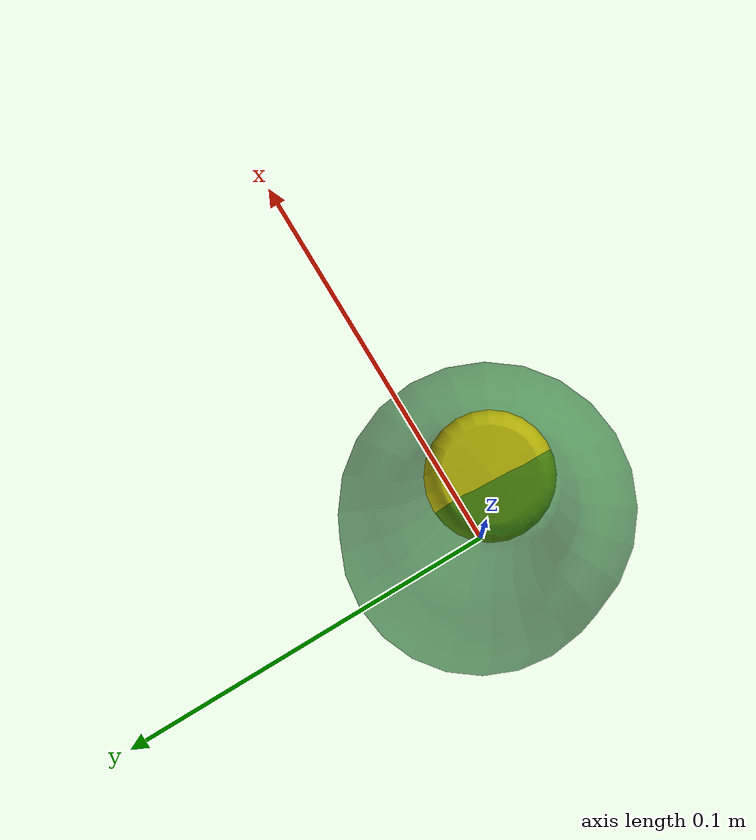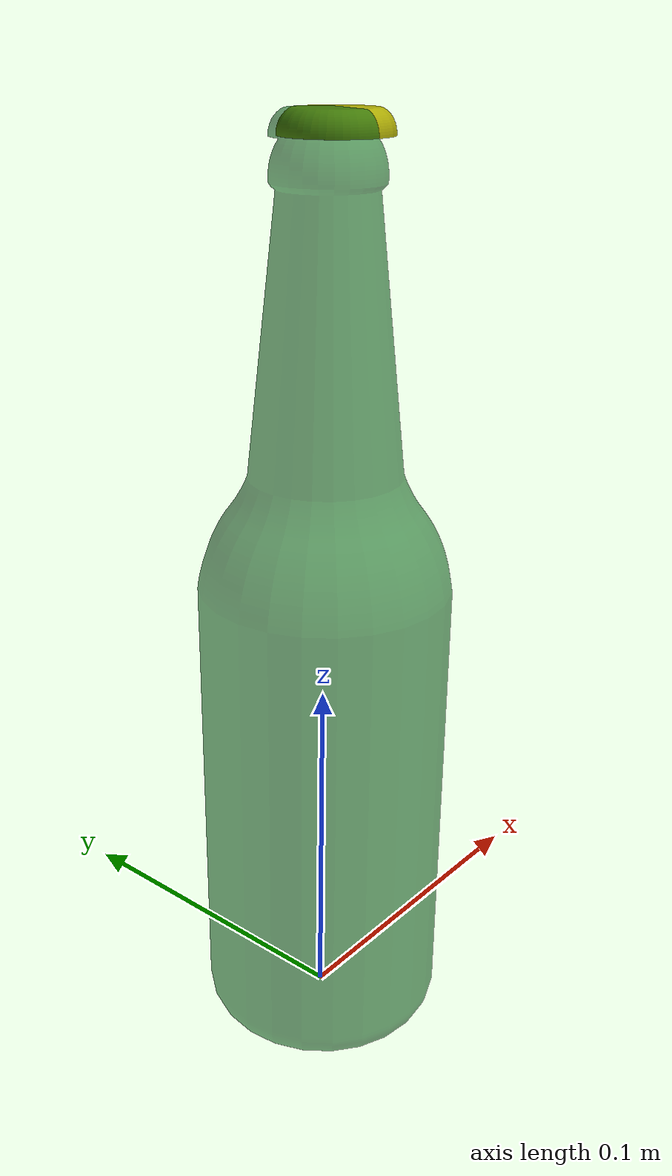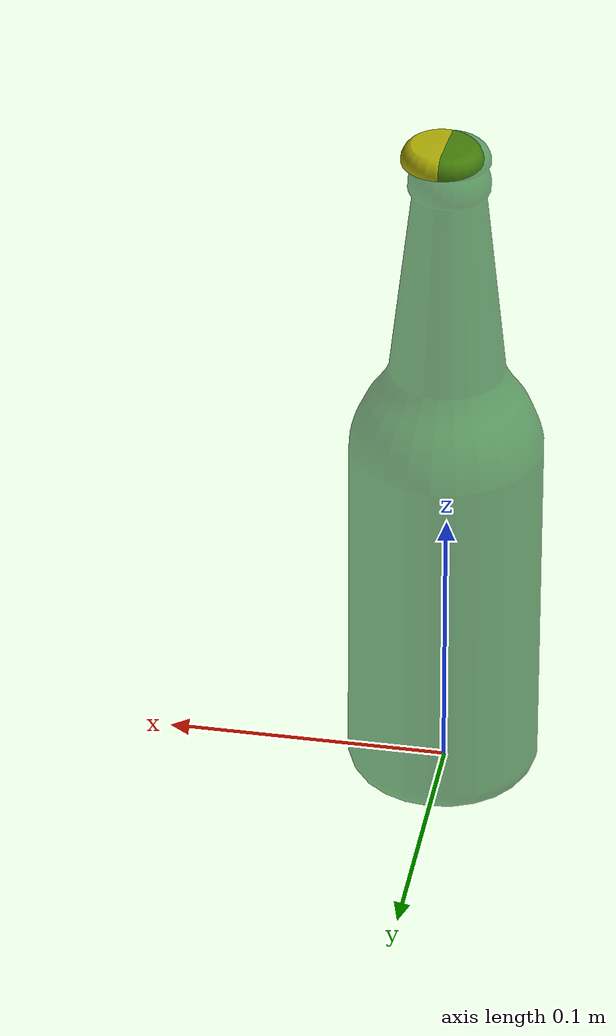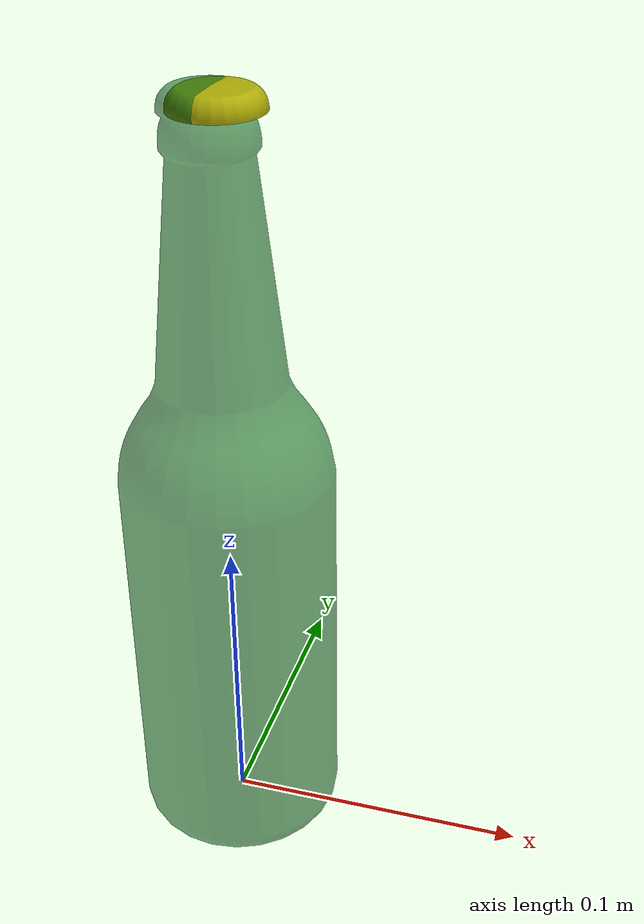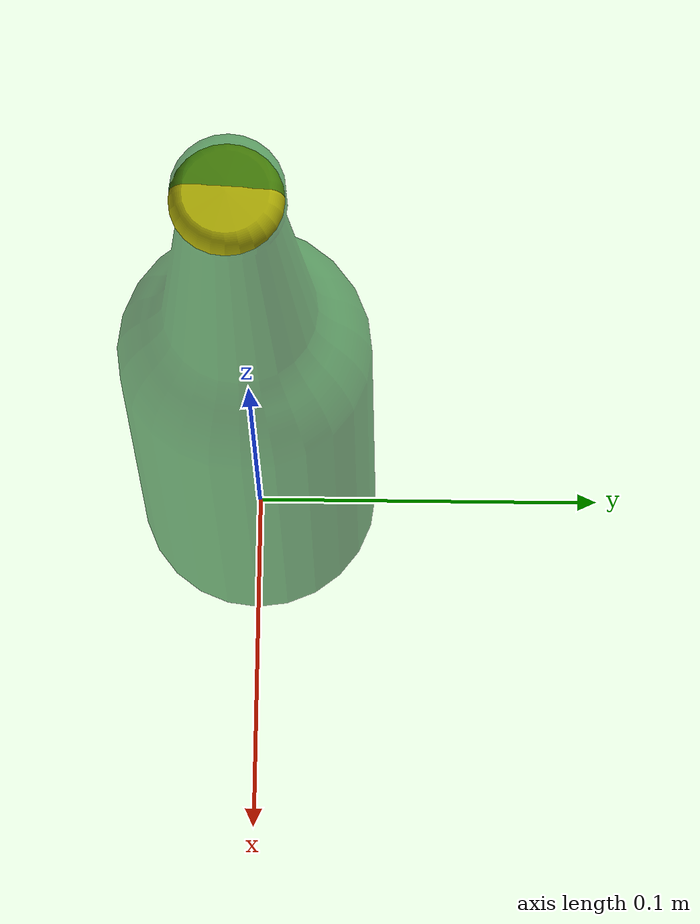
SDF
<?xml version='1.0'?>
<sdf version='1.6'>
  <world name='grocery_world'>
  <model name='bottle_beer'>
    <link name='link_2'>
      <pose frame=''>0.000404 7.5e-05 0 0 -0 0</pose>
        <visual name='visual'>
          <geometry>
          <mesh>
            <uri>model://bottle_beer/meshes/beer_bottle.dae</uri>
            <scale>1 1 1</scale>
          </mesh>
        </geometry>
        <material>
          <lighting>1</lighting>
            <ambient>0.035 0.415 0.098 1</ambient>
          <diffuse>0.035 0.415 0.098 1</diffuse>
          <specular>0.01 0.01 0.01 1</specular>
          <emissive>0 0 0 1</emissive>
          <shader type='vertex'>
            <normal_map>__default__</normal_map>
          </shader>
        </material>
        <cast_shadows>1</cast_shadows>
        <transparency>0.4</transparency>
      </visual>
      <collision name='collision'>
        <laser_retro>0</laser_retro>
        <max_contacts>10</max_contacts>
        <geometry>
          <cylinder>
            <radius>0.035</radius>
            <length>0.25</length>
          </cylinder>
          <pose>0 0 -0.2 0 0 0</pose>
        </geometry>
        </collision>
      <inertial>
        <pose>-0.022 0.0203 0.02917 0 0 0</pose>
        <mass>0.1</mass>
        <inertia>
          <ixx>0.004878</ixx>
          <ixy>-6.2341e-07</ixy>
          <ixz>-7.4538e-07</ixz>
          <iyy>0.00090164</iyy>
          <iyz>-0.00014394</iyz>
          <izz>0.0042946</izz>
        </inertia>
    </inertial>

    </link>
    <link name='link_3'>
      <pose frame=''>-0.000404 -7.5e-05 0 0 -0 0</pose>
        <visual name='visual'>
         <geometry>
          <mesh>
            <uri>model://bottle_beer/meshes/cap.dae</uri>
            <scale>1 1 1</scale>
          </mesh>
        </geometry>
        <material>
          <lighting>1</lighting>
          <ambient>0.694 0.686 0.023 1</ambient>
          <diffuse>0.694 0.686 0.023 1</diffuse>
          <specular>0.01 0.01 0.01 1</specular>
          <emissive>0 0 0 1</emissive>
          <shader type='vertex'>
            <normal_map>__default__</normal_map>
          </shader>
        </material>
        <cast_shadows>1</cast_shadows>
        <transparency>0</transparency>
      </visual>
      <collision name='collision'>
        <laser_retro>0</laser_retro>
        <max_contacts>10</max_contacts>
       <geometry>
          <cylinder>
            <radius>0.01</radius>
            <length>0.005</length>
          </cylinder>

        </geometry>
      </collision>
      <inertial>
    <pose>-0.022 0.0203 0.02917 0 0 0</pose>
    <mass>0.1</mass>
    <inertia>
      <ixx>0.004878</ixx>
      <ixy>-6.2341e-07</ixy>
      <ixz>-7.4538e-07</ixz>
      <iyy>0.00090164</iyy>
      <iyz>-0.00014394</iyz>
      <izz>0.0042946</izz>
    </inertia>
  </inertial>
    </link>
    <joint name="joint" type="fixed">
    <parent>link_2</parent>
    <child>link_3</child>
  </joint>
    <static>1</static>
    <allow_auto_disable>1</allow_auto_disable>
  </model>
</world>
</sdf>
